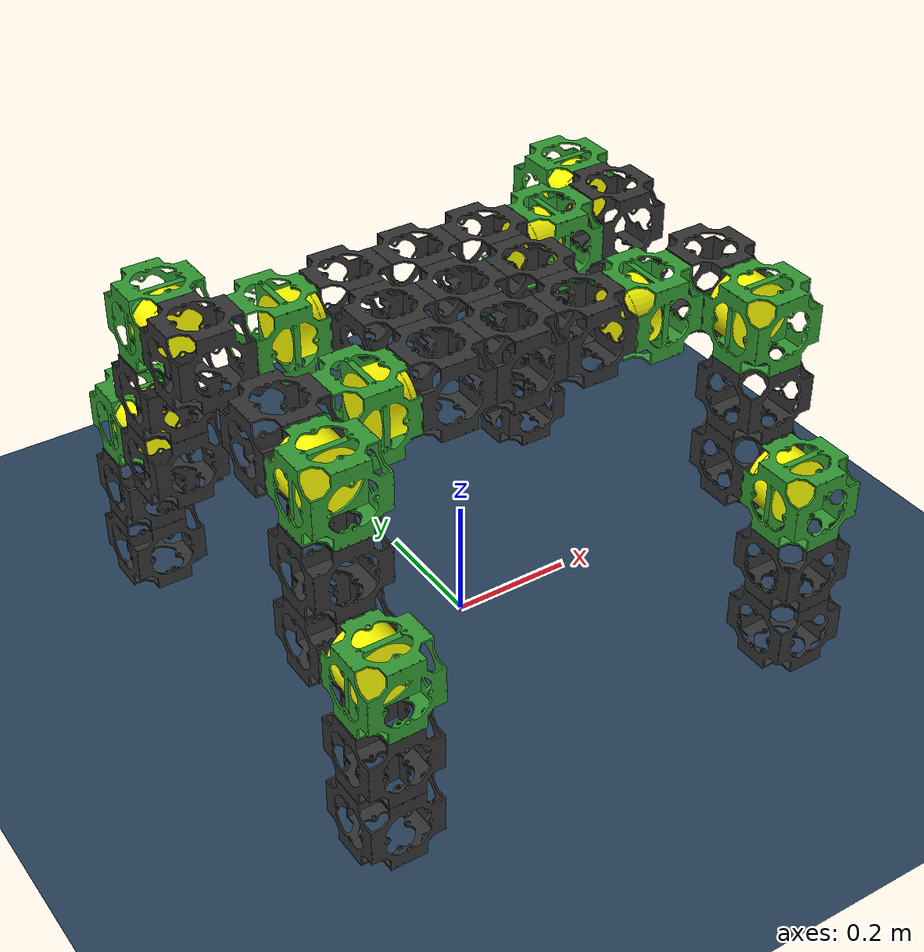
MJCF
<?xml version="1.0" encoding="utf-8"?>
<mujoco model="combined_robots">
    <!-- 编译器设置 -->
    <compiler angle="radian" meshdir="assets" texturedir="assets" autolimits="true" eulerseq="xyz"/>

    <!-- 视觉设置 -->
    <visual>
        <headlight diffuse="0.8 0.8 0.8" ambient="0.5 0.5 0.5" specular="0 0 0"/>
        <rgba haze="0.15 0.25 0.35 1"/>
        <global azimuth="140" elevation="-30"/>
    </visual>

    <!-- 选项设置 -->
    <option>
        <flag contact="disable"/>
    </option>

    <!-- 资源定义 -->
    <asset>
        <!-- 地面纹理 -->
        <texture type="2d" name="groundplane" builtin="checker" mark="edge" rgb1="0.2 0.3 0.4" rgb2="0.1 0.2 0.3"
        markrgb="0.8 0.8 0.8" width="300" height="300"/>
        <material name="groundplane" texture="groundplane" texuniform="true" texrepeat="5 5" reflectance="0.2"/>

        <!-- 装配机械臂的网格 -->
        <mesh name="arm0_link" content_type="model/stl" file="arm0_link.STL"/>
        <mesh name="arm1_link" content_type="model/stl" file="arm1_link.STL"/>
        <mesh name="arm2_link" content_type="model/stl" file="arm2_link.STL"/>
        <mesh name="arm3_link" content_type="model/stl" file="arm3_link.STL"/>
        <mesh name="arm4_link" content_type="model/stl" file="arm4_link.STL"/>
        <mesh name="arm5_link" content_type="model/stl" file="arm5_link.STL"/>
        <mesh name="arm6_link" content_type="model/stl" file="arm6_link.STL"/>
        <mesh name="cube_wheel" content_type="model/stl" file="wheel_link.STL"/>

        <!-- 模块化机器人的网格 -->
        <mesh name="body" file="cube_base.STL"/>
        <mesh name="cube_shell" file="cube_shell.STL"/>
        <mesh name="cube_motor" file="cube_motor.STL"/>
    </asset>

    <!-- 默认类定义 -->
    <default>
        <!-- 装配机械臂的默认设置 -->
        <default class="visual">
            <geom contype="0" conaffinity="0" group="1" type="mesh"/>
        </default>
        <default class="collision">
            <geom contype="1" conaffinity="1" group="1" type="mesh" rgba="0.5 0.6 0.7 0.5"/>
        </default>

        <!-- 模块化机器人的默认设置 -->
        <default class="free_box">
            <geom type="box" size="0.06 0.06 0.06" pos="0 0 0" mass="0.0" contype="0" conaffinity="0" rgba="0 0 0 0"/>
        </default>
        <default class="base_body">
            <geom type="mesh" mesh="body" pos="0.0055426 0.056 -0.01" mass="0.5" contype="0" conaffinity="0" rgba="0.2 0.2 0.2 1"/>
        </default>
        <default class="hinge_body">
            <geom type="box" size="0.06 0.06 0.06" pos="0 0 0" mass="0.5" contype="0" conaffinity="0" rgba="0.2 0.8 0.2 1"/>
        </default>
        <default class="hinge_motor_body">
            <geom type="box" size="0.03 0.03 0.03" pos="0 0 0" mass="0.5" rgba="0.2 0.8 0.2 1" contype="0" conaffinity="0"/>
        </default>
        <default class="wheel_body">
            <geom type="mesh" mesh="body" pos="-0.06 -0.06 -0.06" mass="0.5" rgba="0.2 0.2 0.8 1" contype="0" conaffinity="0"/>
        </default>
        <default class="drone_body">
            <geom type="mesh" mesh="body" pos="-0.06 -0.06 -0.06" mass="0.5" rgba="0.3 0.6 0.9 1" contype="0" conaffinity="0"/>
        </default>
        <default class="end_coll">
            <geom type="box" size="0.06 0.06 0.06" pos="0 0 0" mass="0.5" contype="0" conaffinity="1" rgba="0.8 0.2 0.2 0.8" friction="0.6"/>
        </default>
        <default class="hinge_coll">
            <geom type="box" size="0.06 0.06 0.06" pos="0 0 0" mass="0.5" contype="0" conaffinity="0" rgba="0 0 0 0"/>
        </default>
        <default class="wheel_coll">
            <geom type="box" size="0.06 0.06 0.06" pos="0 0 0" mass="0.5" contype="0" conaffinity="1" rgba="0 0 0 0"/>
        </default>
        <default class="drone_coll">
            <geom type="box" size="0.06 0.06 0.06" pos="0 0 0" mass="0.5" contype="0" conaffinity="0" rgba="0 0 0 0"/>
        </default>
        <default class="wheel_motor_coll">
            <geom type="cylinder" size="0.09 0.03" pos="0 0 0" mass="0.5" quat="0 0 0.707 0.707" contype="0" conaffinity="0" rgba="0.2 0.2 0.8 1" friction="0.8"/>
        </default>
    </default>

    <!-- 关节默认设置 -->
    <default>
        <joint type="hinge" damping="0.1"/>

        <default class="joint+y">
            <joint type="hinge" axis="0 1 0" pos="0 0 0" damping="0.1" armature="0.01"/>
        </default>
        <default class="joint-y">
            <joint type="hinge" axis="0 1 0" pos="0 0 0" damping="0.1" armature="0.01"/>
        </default>
        <default class="joint+x">
            <joint type="hinge" axis="1 0 0" pos="0 0 0" damping="0.1" armature="0.01"/>
        </default>
        <default class="joint-x">
            <joint type="hinge" axis="1 0 0" pos="0 0 0" damping="0.1" armature="0.01"/>
        </default>
        <default class="wheel+y">
            <joint type="hinge" axis="0 1 0" pos="0 0 0"/>
        </default>
        <default class="wheel-y">
            <joint type="hinge" axis="0 1 0" pos="0 0 0"/>
        </default>
    </default>

    <!-- 世界体 -->
    <worldbody>
        <!-- 照明和地面 -->
        <light pos="0 0 1.5" dir="0 0 -1" directional="true" castshadow="false"  diffuse="1.2 1.2 1.2"/>
        <geom name="floor" size="0 0 0.05" type="plane" material="groundplane"/>

        <body name="modular_robot" pos="0 0 0.55">
            <freejoint/>
            <geom class="base_body"/>
            <body name="module2" pos="0 0.12 0">
                <geom class="base_body"/>
            </body>
            <body name="module3" pos="0 -0.12 0">
                <geom class="base_body"/>
            </body>
            <body name="module4" pos="0.12 0 0">
                <geom class="base_body"/>
                <body name="module6" pos="0 0.12 0">
                    <geom class="base_body"/>
                    <body name="modulex1" pos="0.12 0 0">
                        <geom class="free_box"/>
                        <joint class="joint-x" name="modulex1_joint"/>
                        <body name="joint_modulex1" pos="0 0 0" quat="0 -0.7071 0 0.7071">
                            <inertial pos="0 0 0.029868" quat="0.5 0.5 -0.5 0.5" mass="0.50619" diaginertia="0.00068135 0.00049154 0.00049154"/>
                            <geom type="mesh" rgba="1 1 0 1" mesh="cube_motor"/>
                            <body name="joint_modulex1_shell" pos="0.0055426 -0.011957 -0.054801" quat="0.707105 -0.707108 0 0">
                                <geom type="mesh" rgba="0.2 0.6 0.2 1" mesh="cube_shell"/>
                            </body>
                        </body>

                        <body name="module17" pos="0.12 0 0">
                            <geom class="base_body"/>
                            <body name="module21" pos="0 0.12 0" quat="0.707 0 0.707 0">
                                <geom class="free_box"/>
                                <joint class="joint-y" name="module21_joint"/>
                                <body name="joint_module21" pos="0 0 0" quat="0.707 0.707 0 0">
                                    <geom type="mesh" rgba="1 1 0 1" mesh="cube_motor"/>
                                    <body name="joint_module21_shell" pos="0.0055426 -0.011957 -0.054801" quat="0.707105 -0.707108 0 0">
                                        <geom type="mesh" rgba="0.2 0.6 0.2 1" mesh="cube_shell"/>
                                    </body>
                                </body>
                                <body name="module25" pos="0.12 0 0">
                                    <geom class="base_body"/>
                                    <body name="module29" pos="0.12 0 0">
                                        <geom class="base_body"/>
                                        <body name="module33" pos="0 0.12 0">
                                            <geom class="free_box"/>
                                            <joint class="joint-y" name="module33_joint"/>
                                            <body name="joint_module33" pos="0 0 0" quat="0.707 0.707 0 0">
                                                <inertial pos="0 0 0.029868" quat="0.5 0.5 -0.5 0.5" mass="0.50619" diaginertia="0.00068135 0.00049154 0.00049154"/>
                                                <geom type="mesh" rgba="1 1 0 1" mesh="cube_motor"/>
                                                <body name="joint_module33_shell" pos="0.0055426 -0.011957 -0.054801" quat="0.707105 -0.707108 0 0">
                                                    <geom type="mesh" rgba="0.2 0.6 0.2 1" mesh="cube_shell"/>
                                                </body>
                                            </body>
                                            <body name="module37" pos="0.12 0 0">
                                                <geom class="base_body"/>
                                                <body name="module41" pos="0.12 0 0">
                                                    <geom class="base_body"/>

                                                </body>
                                            </body>
                                        </body>
                                    </body>
                                </body>
                            </body>
                        </body>
                    </body>
                </body>
                <body name="module7" pos="0 -0.12 0">
                    <geom class="base_body"/>
                    <body name="modulex2" pos="0.12 0 0">
                        <geom class="free_box"/>
                        <joint class="joint-x" name="modulex2_joint"/>
                        <body name="joint_modulex2" pos="0 0 0" quat="0 -0.7071 0 0.7071">
                            <inertial pos="0 0 0.029868" quat="0.5 0.5 -0.5 0.5" mass="0.50619" diaginertia="0.00068135 0.00049154 0.00049154"/>
                            <geom type="mesh" rgba="1 1 0 1" mesh="cube_motor"/>
                            <body name="joint_modulex2_shell" pos="0.0055426 -0.011957 -0.054801" quat="0.707105 -0.707108 0 0">
                                <geom type="mesh" rgba="0.2 0.6 0.2 1" mesh="cube_shell"/>
                            </body>
                        </body>
                        <body name="module18" pos="0.12 0 0">
                            <geom class="base_body"/>

                            <body name="module22" pos="0 -0.12 0" quat="0.707 0 0.707 0">
                                <geom class="free_box"/>
                                <joint class="joint+y" name="module22_joint"/>
                                <body name="joint_module22" pos="0 0 0" quat="-0.707 0.707 0 0">
                                    <inertial pos="0 0 0.029868" quat="0.5 0.5 -0.5 0.5" mass="0.50619" diaginertia="0.00068135 0.00049154 0.00049154"/>
                                    <geom type="mesh" rgba="1 1 0 1" mesh="cube_motor"/>
                                    <body name="joint_module22_shell" pos="0.0055426 -0.011957 -0.054801" quat="0.707105 -0.707108 0 0">
                                        <geom type="mesh" rgba="0.2 0.6 0.2 1" mesh="cube_shell"/>
                                    </body>
                                </body>
                                <body name="module26" pos="0.12 0 0">
                                    <geom class="base_body"/>

                                    <body name="module30" pos="0.12 0 0">
                                        <geom class="base_body"/>

                                        <body name="module34" pos="0 -0.12 0">
                                            <geom class="free_box"/>
                                            <joint class="joint+y" name="module34_joint"/>
                                            <body name="joint_module34" pos="0 0 0" quat="-0.707 0.707 0 0">
                                                <inertial pos="0 0 0.029868" quat="0.5 0.5 -0.5 0.5" mass="0.50619" diaginertia="0.00068135 0.00049154 0.00049154"/>
                                                <geom type="mesh" rgba="1 1 0 1" mesh="cube_motor"/>
                                                <body name="joint_module34_shell" pos="0.0055426 -0.011957 -0.054801" quat="0.707105 -0.707108 0 0">
                                                    <geom type="mesh" rgba="0.2 0.6 0.2 1" mesh="cube_shell"/>
                                                </body>
                                            </body>

                                            <body name="module38" pos="0.12 0 0">
                                                <geom class="base_body"/>

                                                <body name="module42" pos="0.12 0 0">
                                                    <geom class="base_body"/>

                                                </body>
                                            </body>
                                        </body>
                                    </body>
                                </body>
                            </body>
                        </body>
                    </body>
                </body>
            </body>
            <body name="module5" pos="-0.12 0 0">
                <geom class="base_body"/>

                <body name="module9" pos="0 0.12 0">
                    <geom class="base_body"/>

                    <body name="modulex3" pos="-0.12 0 0" >
                        <geom class="free_box"/>
                        <joint class="joint+x" name="modulex3_joint"/>
                        <body name="joint_modulex3" pos="0 0 0" quat="0 0.7071 0 0.7071">
                            <geom type="mesh" rgba="1 1 0 1" mesh="cube_motor"/>
                            <body name="joint_modulex3_shell" pos="0.0055426 -0.011957 -0.054801" quat="0.707105 -0.707108 0 0">
                                <geom type="mesh" rgba="0.2 0.6 0.2 1" mesh="cube_shell"/>
                            </body>
                        </body>
                        <body name="module19" pos="-0.12 0 0">
                            <geom class="base_body"/>

                            <body name="module23" pos="0 0.12 0" quat="0.707 0 -0.707 0">
                                <geom class="free_box"/>
                                <joint class="joint-y" name="module23_joint"/>
                                <body name="joint_module23" pos="0 0 0" quat="0.707 0.707 0 0">
                                    <geom type="mesh" rgba="1 1 0 1" mesh="cube_motor"/>
                                    <body name="joint_module23_shell" pos="0.0055426 -0.011957 -0.054801" quat="0.707105 -0.707108 0 0">
                                        <geom type="mesh" rgba="0.2 0.6 0.2 1" mesh="cube_shell"/>
                                    </body>
                                </body>
                                <body name="module27" pos="-0.12 0 0">
                                    <geom class="base_body"/>

                                    <body name="module31" pos="-0.12 0 0">
                                        <geom class="base_body"/>

                                        <body name="module35" pos="0 0.12 0">
                                            <geom class="free_box"/>
                                            <joint class="joint-y" name="module35_joint"/>
                                            <body name="joint_module35" pos="0 0 0" quat="0.707 0.707 0 0">
                                                <inertial pos="0 0 0.029868" quat="0.5 0.5 -0.5 0.5" mass="0.50619" diaginertia="0.00068135 0.00049154 0.00049154"/>
                                                <geom type="mesh" rgba="1 1 0 1" mesh="cube_motor"/>
                                                <body name="joint_module35_shell" pos="0.0055426 -0.011957 -0.054801" quat="0.707105 -0.707108 0 0">
                                                    <geom type="mesh" rgba="0.2 0.6 0.2 1" mesh="cube_shell"/>
                                                </body>
                                            </body>
                                            <body name="module39" pos="-0.12 0 0">
                                                <geom class="base_body"/>

                                                <body name="module43" pos="-0.12 0 0">
                                                    <geom class="base_body"/>

                                                </body>
                                            </body>
                                        </body>
                                    </body>
                                </body>
                            </body>
                        </body>
                    </body>
                </body>
                <body name="module10" pos="0 -0.12 0">
                    <geom class="base_body"/>

                    <body name="modulex4" pos="-0.12 0 0" >
                        <geom class="free_box"/>
                        <joint class="joint+x" name="modulex4_joint"/>
                        <body name="joint_modulex4" pos="0 0 0" quat="0 0.7071 0 0.7071">
                            <inertial pos="0 0 0.029868" quat="0.5 0.5 -0.5 0.5" mass="0.50619" diaginertia="0.00068135 0.00049154 0.00049154"/>
                            <geom type="mesh" rgba="1 1 0 1" mesh="cube_motor"/>
                            <body name="joint_modulex4_shell" pos="0.0055426 -0.011957 -0.054801" quat="0.707105 -0.707108 0 0">
                                <geom type="mesh" rgba="0.2 0.6 0.2 1" mesh="cube_shell"/>
                            </body>
                        </body>

                        <body name="module20" pos="-0.12 0 0">
                            <geom class="base_body"/>

                            <body name="module24" pos="0 -0.12 0" quat="0.707 0 -0.707 0">
                                <geom class="free_box"/>
                                <joint class="joint+y" name="module24_joint"/>
                                <body name="joint_module24" pos="0 0 0" quat="-0.707 0.707 0 0">
                                    <inertial pos="0 0 0.029868" quat="0.5 0.5 -0.5 0.5" mass="0.50619" diaginertia="0.00068135 0.00049154 0.00049154"/>
                                    <geom type="mesh" rgba="1 1 0 1" mesh="cube_motor"/>
                                    <body name="joint_module24_shell" pos="0.0055426 -0.011957 -0.054801" quat="0.707105 -0.707108 0 0">
                                        <geom type="mesh" rgba="0.2 0.6 0.2 1" mesh="cube_shell"/>
                                    </body>
                                </body>
                                <body name="module28" pos="-0.12 0 0">
                                    <geom class="base_body"/>

                                    <body name="module32" pos="-0.12 0 0">
                                        <geom class="base_body"/>

                                        <body name="module36" pos="0 -0.12 0">
                                            <geom class="free_box"/>
                                            <joint class="joint+y" name="module36_joint"/>
                                            <body name="joint_module36" pos="0 0 0" quat="-0.707 0.707 0 0">
                                                <inertial pos="0 0 0.029868" quat="0.5 0.5 -0.5 0.5" mass="0.50619" diaginertia="0.00068135 0.00049154 0.00049154"/>
                                                <geom type="mesh" rgba="1 1 0 1" mesh="cube_motor"/>
                                                <body name="joint_module36_shell" pos="0.0055426 -0.011957 -0.054801" quat="0.707105 -0.707108 0 0">
                                                    <geom type="mesh" rgba="0.2 0.6 0.2 1" mesh="cube_shell"/>
                                                </body>
                                            </body>
                                            <body name="module40" pos="-0.12 0 0">
                                                <geom class="base_body"/>

                                                <body name="module44" pos="-0.12 0 0">
                                                    <geom class="base_body"/>

                                                </body>
                                            </body>
                                        </body>
                                    </body>
                                </body>
                            </body>
                        </body>
                    </body>
                </body>
            </body>
        </body>
    </worldbody>

    <keyframe>
        <key name="home" qpos="0 0 0.48 1 0 0 0  0 0.5 -1.2 0 0.5 -1.2 0 0.5 -1.2 0 0.5 -1.2 "/>
        <key name="tiling" qpos="0 0 0.08 1 0 0 0  0 1.57 -3.14 0 1.57 -3.14 0 1.57 -3.14 0 1.57 -3.14"/>
    </keyframe>

</mujoco>
